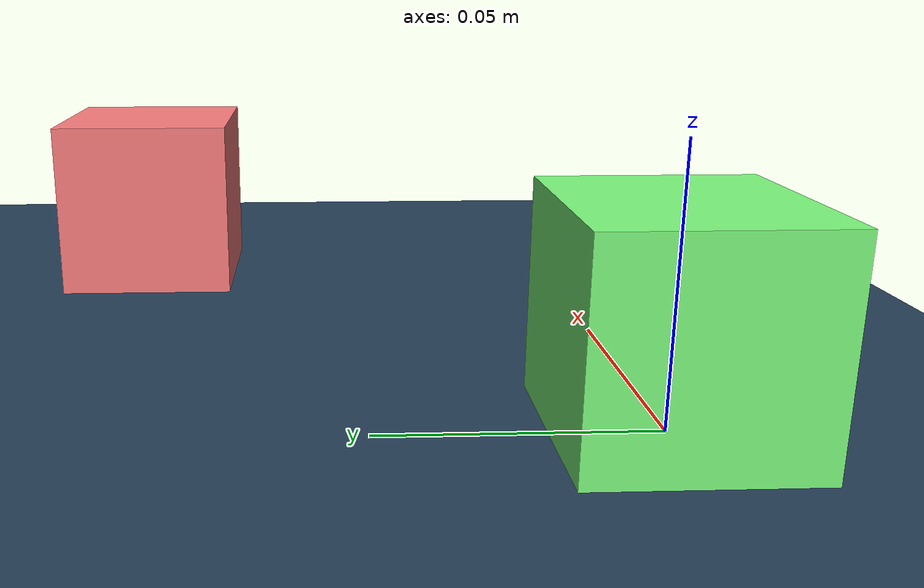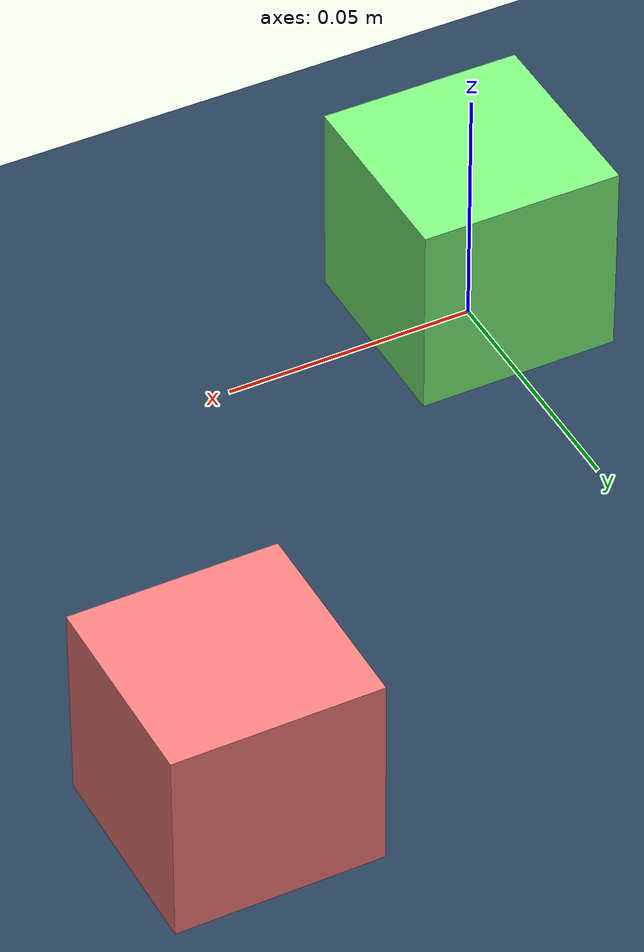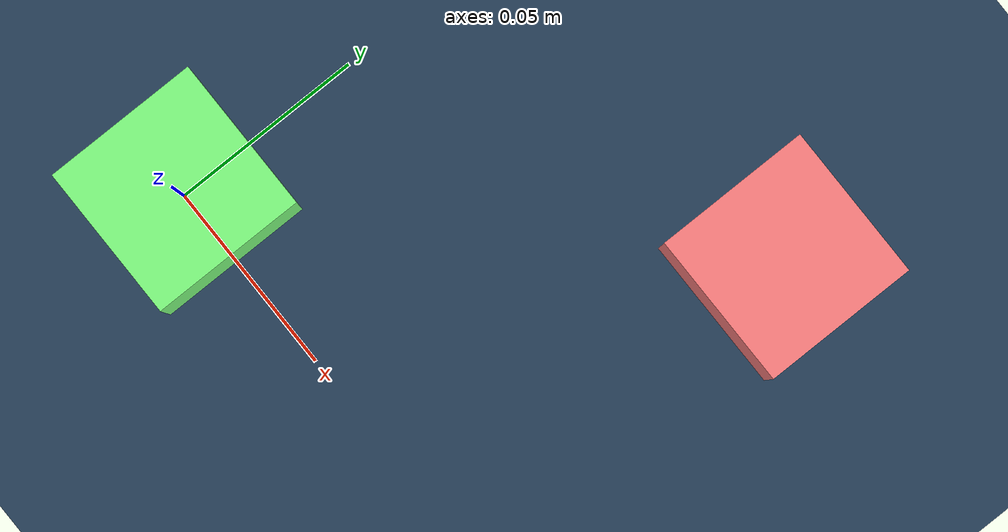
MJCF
<mujoco>
  <asset>
    <texture name="grid" type="2d" builtin="checker" rgb1=".1 .2 .3"
     rgb2=".2 .3 .4" width="300" height="300"/>
    <material name="grid" texture="grid" texrepeat="8 8" reflectance=".2"/>
  </asset>

  <worldbody>
    <geom size="2 2 .01" type="plane" material="grid"/>
    <light pos="0 0 .6"/>
	<body name="spin_box" pos="0 0 .02">
		<joint name="spin_joint" type="hinge" axis="0 0 1"/>
		<geom name="red_box" type="box" size=".02 .02 .02" rgba=".5 1 .5 1"/>
	</body>
	<body name="slide_box" pos=".1 .1 .02">
		<joint name="slide_joint" type="slide" axis="0 1 0"/>
		<geom name="orange_box" type="box" size=".02 .02 .02" rgba="1 .5 .5 1"/>
	</body>
  </worldbody>
    <actuator>
        <!-- Add a general force actuator to apply torque to the joint -->
        <general name="spinner" joint="spin_joint" ctrlrange="-1 1"/>
        <general name="slider" joint="slide_joint" ctrlrange="-1 1"/>
    </actuator>

</mujoco>
